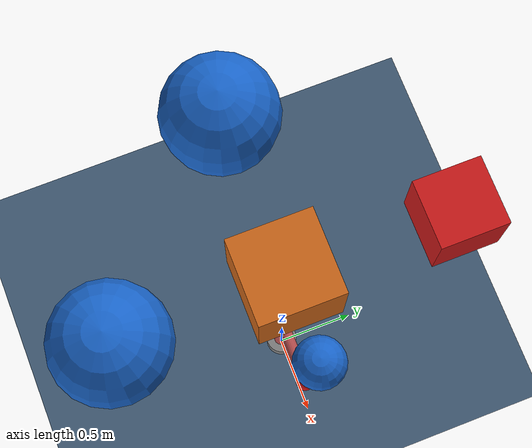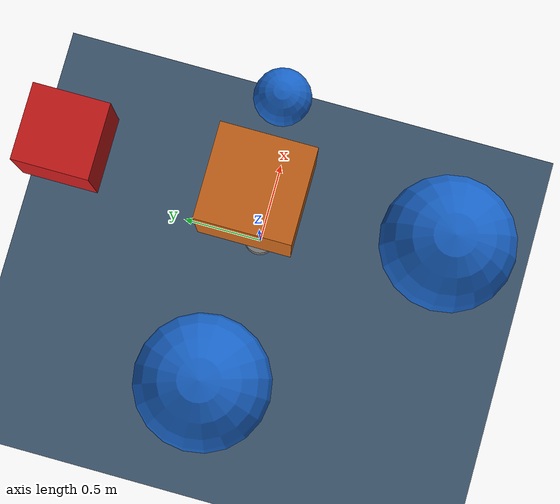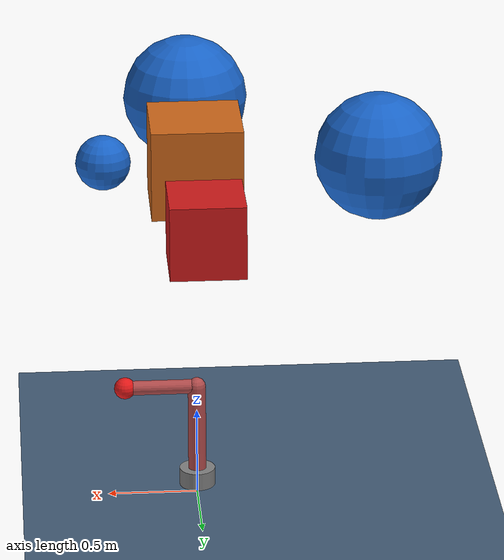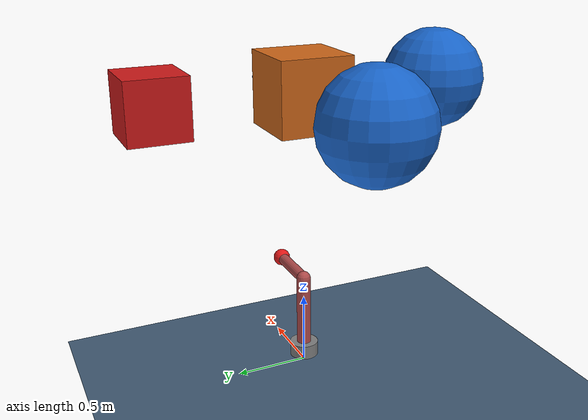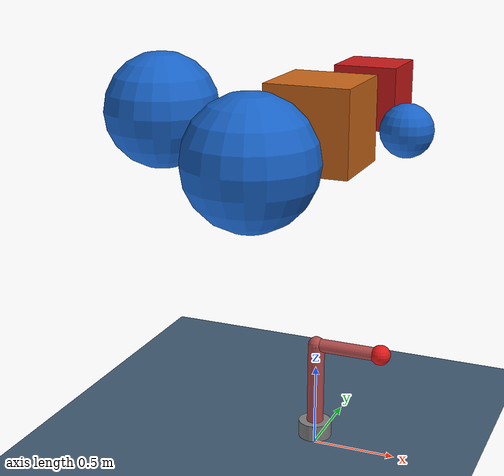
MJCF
<mujoco model="demo">
  <compiler angle="degree" coordinate="local"/>

  <!-- Gravity is enabled by default -->
  <option gravity="0 0 0" timestep="0.002">
    <flag warmstart="enable"/>
  </option>

  <!-- Visual settings -->
  <visual>
    <headlight ambient="0.5 0.5 0.5" diffuse="0.8 0.8 0.8"/>
    <rgba haze="0.15 0.25 0.35 1"/>  <!-- Haze for depth perception -->
    <global azimuth="10" elevation="-40"/>
  </visual>

  <!-- Assets: materials and textures -->
  <asset>
    <texture type="skybox" builtin="gradient" rgb1="0.3 0.5 0.7" rgb2="0 0 0" width="512" height="512"/>
    <texture name="grid" type="2d" builtin="checker" rgb1="0.2 0.3 0.4" rgb2="0.3 0.4 0.5" width="512" height="512"/>
    <material name="grid" texture="grid" texrepeat="1 1" texuniform="true" reflectance="0.2"/>
    <material name="robot" rgba="0.7 0.3 0.3 1"/>
    <material name="object" rgba="0.3 0.7 0.3 1"/>
  </asset>

  <!-- World body -->
  <worldbody>
    <!-- Floor -->
    <geom name="floor" type="plane" size="5 5 0.1" material="grid"/>

    <!-- Lighting -->
    <light pos="0 0 3" dir="0 0 -1" directional="true"/>

    <!-- Static objects -->
    <body name="static_box" pos="0 0 2">
      <geom name="box" type="box" size="0.25 0.25 0.25" rgba="0.8 0.4 0.1 1" mass="0.2"/>
    </body>
    <body name="ball" pos="0.5 0 2">
      <geom name="sphere" type="sphere" size="0.15" rgba="0.1 0.4 0.8 1" mass="1"/>
    </body>
    <body name="ball2" pos="-1 0 2">
      <geom name="sphere2" type="sphere" size="0.35" rgba="0.1 0.4 0.8 1" mass="1"/>
    </body>

    <!-- Free-falling objects -->
    <body name="falling_square" pos="0 1 2">
          <geom name="box2" type="box" size="0.2 0.2 0.2" rgba="0.8 0.1 0.1 1" mass="0.5"/>
      <freejoint/>
    </body>

    <body name="ball3" pos="0 -1 2">
      <geom name="sphere3" type="sphere" size="0.35" rgba="0.1 0.4 0.8 1" mass="1"/>
      <freejoint/>
    </body>

    <!-- Simple 2-link robot arm -->
    <body name="base" pos="0 0 0.1">
      <geom name="base_geom" type="cylinder" size="0.1 0.05" rgba="0.5 0.5 0.5 1"/>
      <body name="link1" pos="0 0 0.05">
        <joint name="joint1" type="hinge" axis="0 0 1" range="-180 180" damping="0.1"/>
        <geom name="link1_geom" type="capsule" size="0.05" fromto="0 0 0 0 0 0.5" material="robot"/>

        <body name="link2" pos="0 0 0.5">
          <joint name="joint2" type="hinge" axis="0 1 0" range="-120 120" damping="0.1"/>
          <geom name="link2_geom" type="capsule" size="0.04" fromto="0 0 0 0.4 0 0" material="robot"/>

          <!-- End effector -->
          <body name="end_effector" pos="0.4 0 0">
            <geom name="ee_geom" type="sphere" size="0.06" rgba="0.9 0.1 0.1 1"/>
          </body>
        </body>
      </body>
    </body>

  </worldbody>

</mujoco>
